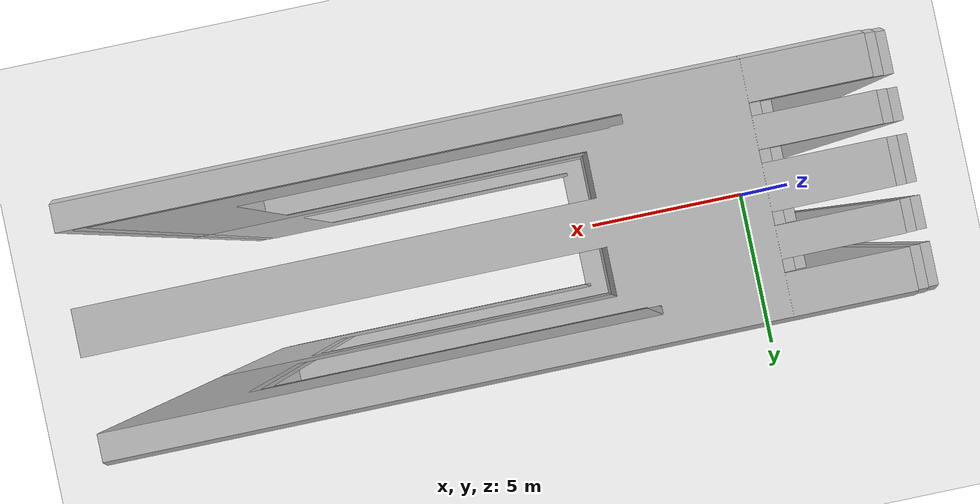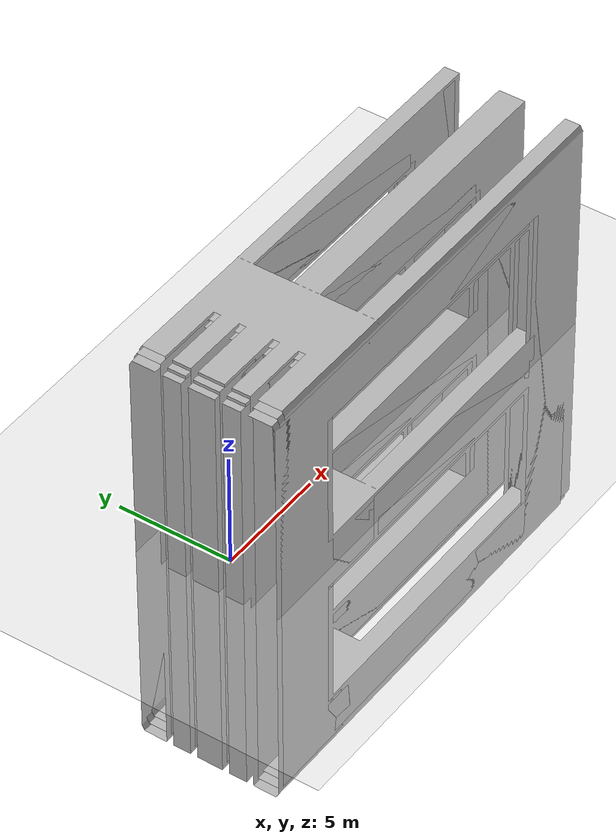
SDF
<?xml version="1.0" ?>
<sdf version="1.4">
  <world name="default">
    <physics type='ode'>
      <gravity>0 0 -9.81</gravity>
      <!-- max step size has to be a multiple of the desired task rate-->
      <max_step_size>0.001</max_step_size>
      <real_time_factor>1</real_time_factor>
    </physics>
    <!-- A global light source -->
    <include>
      <uri>model://sun</uri>
    </include>
    <!-- A ground plane -->
    <include>
      <uri>model://ground_plane</uri>
    </include>
    <include>
      <name>pallet_1</name>
      <uri>model://pallet</uri>
      <pose>1.35 0 0 0 0 0</pose>
    </include>
    <include>
      <name>pallet_2</name>
      <uri>model://pallet</uri>
      <pose>1.65 0 0.14 0 0 0</pose>
    </include>
    <include>
      <name>pallet_3</name>
      <uri>model://pallet</uri>
      <pose>1.95 0 0.28 0 0 0</pose>
    </include>
  </world>
</sdf>

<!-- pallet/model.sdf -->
<sdf version="1.4">
	<model name="pallet">
		<static>true</static>
		<link name="link">
			<pose>0 0 0.07 0 0 1.5708</pose>
			<collision name="collision">
				<geometry>
					<mesh>
						<uri>model://pallet_benchmark/mesh/pallet.dae</uri>
						<!-- original size = 1.016 x 0.090678 x 0.090678 m -->
						<!-- final size = 0.8 x 1.2 x 0.14 m -->
						<scale>0.7874 13.2336 1.5439</scale>
					</mesh>
				</geometry>
				<surface>
					<bounce>
						<restitution_coefficient>0.01</restitution_coefficient>
						<threshold>5.0</threshold>
					</bounce>
					<friction>
						<ode>
							<mu>10</mu>
							<mu2>10</mu2>
						</ode>
					</friction>
					<contact>
						<ode>
							<soft_cfm>0.001</soft_cfm>
							<kp>100000.0</kp>
							<kd>1000.0</kd>
						</ode>
					</contact>
				</surface>
			</collision>
			<visual name="visual">
				<geometry>
					<mesh>
						<uri>model://pallet_benchmark/mesh/pallet.dae</uri>
						<!-- original size = 1.016 x 0.090678 x 0.090678 m -->
						<!-- final size = 0.8 x 1.2 x 0.14 m -->
						<scale>0.7874 13.2336 1.5439</scale>
					</mesh>
				</geometry>
			</visual>
		</link>
	</model>
</sdf>
